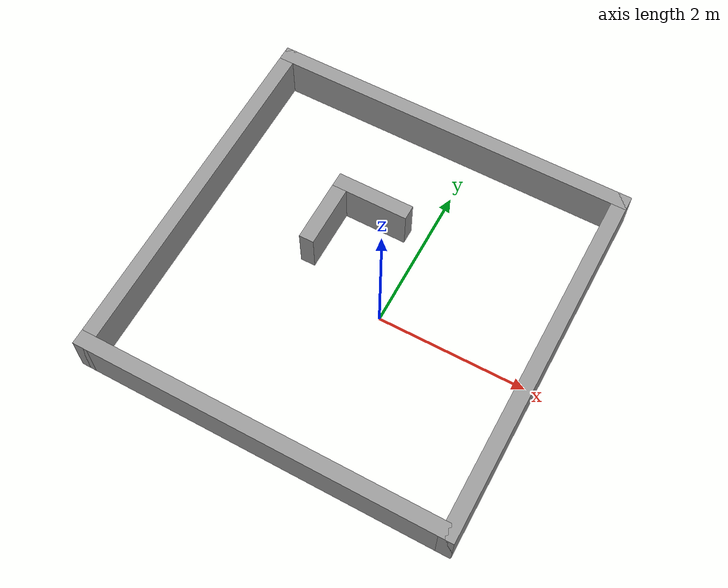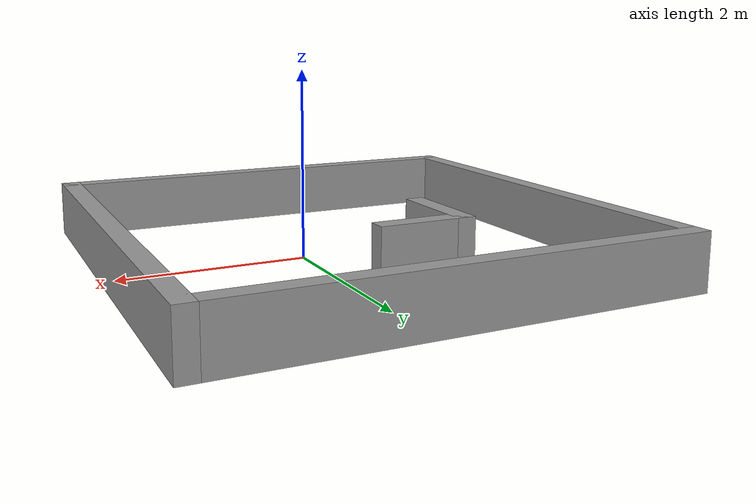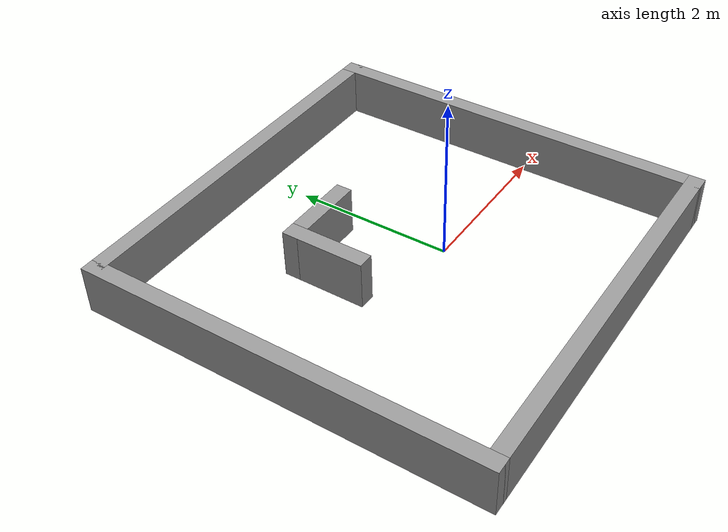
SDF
<?xml version='1.0'?>
<sdf version='1.7'>
  <model name='less_obstacles_env'>
    <pose>-0.387 0.241 0 0 -0 0</pose>
    <link name='Wall_19'>
      <collision name='Wall_19_Collision'>
        <geometry>
          <box>
            <size>5.05 0.2 0.6</size>
          </box>
        </geometry>
        <pose>0 0 0.3 0 -0 0</pose>
      </collision>
      <visual name='Wall_19_Visual'>
        <pose>0 0 0.3 0 -0 0</pose>
        <geometry>
          <box>
            <size>5.05 0.2 0.6</size>
          </box>
        </geometry>
        <material>
          <script>
            <uri>file://media/materials/scripts/gazebo.material</uri>
            <name>Gazebo/Grey</name>
          </script>
          <ambient>1 1 1 1</ambient>
        </material>
        <meta>
          <layer>0</layer>
        </meta>
      </visual>
      <pose>-2.425 0 0 0 -0 -1.5708</pose>
    </link>
    <link name='Wall_20'>
      <collision name='Wall_20_Collision'>
        <geometry>
          <box>
            <size>5.05 0.2 0.6</size>
          </box>
        </geometry>
        <pose>0 0 0.3 0 -0 0</pose>
      </collision>
      <visual name='Wall_20_Visual'>
        <pose>0 0 0.3 0 -0 0</pose>
        <geometry>
          <box>
            <size>5.05 0.2 0.6</size>
          </box>
        </geometry>
        <material>
          <script>
            <uri>file://media/materials/scripts/gazebo.material</uri>
            <name>Gazebo/Grey</name>
          </script>
          <ambient>1 1 1 1</ambient>
        </material>
        <meta>
          <layer>0</layer>
        </meta>
      </visual>
      <pose>-0 -2.425 0 0 -0 0</pose>
    </link>
    <link name='Wall_21'>
      <collision name='Wall_21_Collision'>
        <geometry>
          <box>
            <size>5.05 0.2 0.6</size>
          </box>
        </geometry>
        <pose>0 0 0.3 0 -0 0</pose>
      </collision>
      <visual name='Wall_21_Visual'>
        <pose>0 0 0.3 0 -0 0</pose>
        <geometry>
          <box>
            <size>5.05 0.2 0.6</size>
          </box>
        </geometry>
        <material>
          <script>
            <uri>file://media/materials/scripts/gazebo.material</uri>
            <name>Gazebo/Grey</name>
          </script>
          <ambient>1 1 1 1</ambient>
        </material>
        <meta>
          <layer>0</layer>
        </meta>
      </visual>
      <pose>2.425 0 0 0 -0 1.5708</pose>
    </link>
    <link name='Wall_22'>
      <collision name='Wall_22_Collision'>
        <geometry>
          <box>
            <size>5.04995 0.2 0.6</size>
          </box>
        </geometry>
        <pose>0 0 0.3 0 -0 0</pose>
      </collision>
      <visual name='Wall_22_Visual'>
        <pose>0 0 0.3 0 -0 0</pose>
        <geometry>
          <box>
            <size>5.04995 0.2 0.6</size>
          </box>
        </geometry>
        <material>
          <script>
            <uri>file://media/materials/scripts/gazebo.material</uri>
            <name>Gazebo/Grey</name>
          </script>
          <ambient>1 1 1 1</ambient>
        </material>
        <meta>
          <layer>0</layer>
        </meta>
      </visual>
      <pose>-0 2.425 0 0 -0 3.14159</pose>
    </link>
    <link name='Wall_33'>
      <collision name='Wall_33_Collision'>
        <geometry>
          <box>
            <size>1.05 0.2 0.6</size>
          </box>
        </geometry>
        <pose>0 0 0.3 0 -0 0</pose>
      </collision>
      <visual name='Wall_33_Visual'>
        <pose>0 0 0.3 0 -0 0</pose>
        <geometry>
          <box>
            <size>1.05 0.2 0.6</size>
          </box>
        </geometry>
        <material>
          <script>
            <uri>file://media/materials/scripts/gazebo.material</uri>
            <name>Gazebo/Grey</name>
          </script>
          <ambient>1 1 1 1</ambient>
        </material>
        <meta>
          <layer>0</layer>
        </meta>
      </visual>
      <pose>-0.377 0.984 0 0 -0 3.14159</pose>
    </link>
    <link name='Wall_34'>
      <collision name='Wall_34_Collision'>
        <geometry>
          <box>
            <size>1.05031 0.2 0.6</size>
          </box>
        </geometry>
        <pose>0 0 0.3 0 -0 0</pose>
      </collision>
      <visual name='Wall_34_Visual'>
        <pose>0 0 0.3 0 -0 0</pose>
        <geometry>
          <box>
            <size>1.05031 0.2 0.6</size>
          </box>
        </geometry>
        <material>
          <script>
            <uri>file://media/materials/scripts/gazebo.material</uri>
            <name>Gazebo/Grey</name>
          </script>
          <ambient>1 1 1 1</ambient>
        </material>
        <meta>
          <layer>0</layer>
        </meta>
      </visual>
      <pose>-0.802 0.559 0 0 -0 -1.5708</pose>
    </link>
    <static>1</static>
  </model>
</sdf>
